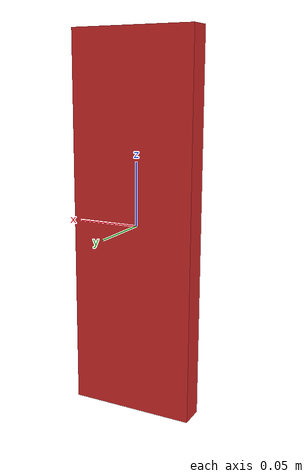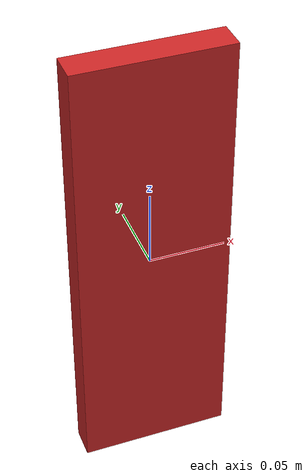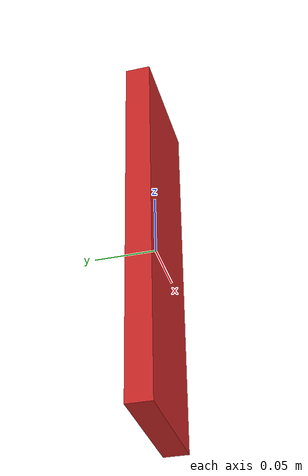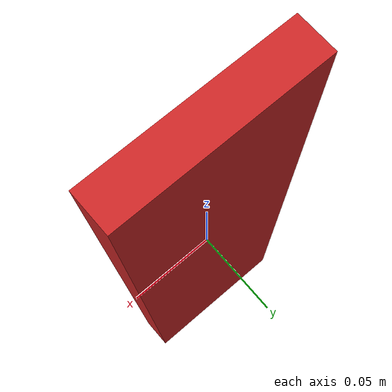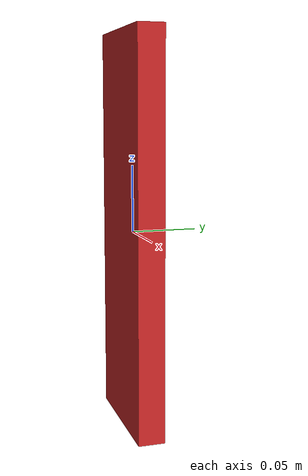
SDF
<?xml version="1.0" ?>
<sdf version='1.4'>
  <model name="reflective_tag">
      <static>1</static>
      <link name='link'>
        <inertial>
          <mass>0.25</mass>
          <inertia>
            <ixx>0.00015</ixx>
            <ixy>0.000000</ixy>
            <ixz>0.000000</ixz>
            <iyy>0.00015</iyy>
            <iyz>0.000000</iyz>
            <izz>0.00015</izz>
          </inertia>
        </inertial>
        <collision name='collision'>
          <geometry>
            <box>
              <size>0.10 0.02 0.30</size>
            </box>
          </geometry>
          <laser_retro>8000</laser_retro>
          <surface>
            <friction>
              <ode>
                <mu>30.0</mu>
                <mu2>30.0</mu2>
              </ode>
            </friction>
            <contact>
              <ode>
                <kp>1000000.0</kp>
                <kd>100.0</kd>
                <max_vel>1.0</max_vel>
                <min_depth>0.002</min_depth>
              </ode>
            </contact>
          </surface>
        </collision>
        <visual name='visual'>
          <geometry>
            <box>
              <size>0.10 0.02 0.30</size>
            </box>
          </geometry>
          <material>
            <script>
              <uri>file://media/materials/scripts/gazebo.material</uri>
              <name>Gazebo/Red</name>
            </script>
          </material>
        </visual>
        <velocity_decay>
          <linear>0.000000</linear>
          <angular>0.000000</angular>
        </velocity_decay>
        <self_collide>0</self_collide>
        <kinematic>0</kinematic>
        <gravity>1</gravity>
      </link>
  </model>
</sdf>
